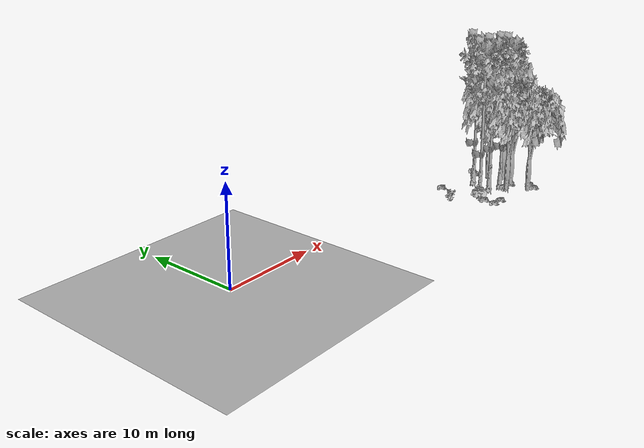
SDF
<sdf version="1.7">
 <world name="default">
  <model name="ground_plane">
   <static>1</static>
   <link name="link">
    <collision name="collision">
     <pose>-50 0 0 0 -0 0</pose>
     <geometry><plane><normal>0 0 1</normal><size>80 80</size></plane></geometry>
     <surface><contact><ode><min_depth>0.01</min_depth><max_vel>0</max_vel></ode></contact></surface>
    </collision>
    <visual name="grass">
     <cast_shadows>0</cast_shadows>
     <geometry>
      <mesh>
       <scale>0.46714285714285714 0.46714285714285714 0.1</scale>
       <uri>file://grass_plane/meshes/grass_plane.dae</uri>
      </mesh>
     </geometry>
    </visual>
   </link>
  </model>
  <model name="Tree 49">
   <static>1</static>
   <pose>36.267385386695864 -2.3112603195002066 0 1.57079 -0 0</pose>
   <link name="link">
    <collision name="collision">
     <geometry><mesh><scale>3.5 5 3.5</scale><uri>model://tree_9/meshes/tree_9.obj</uri></mesh></geometry>
    </collision>
    <visual name="visual">
     <geometry><mesh><scale>3.5 5 3.5</scale><uri>model://tree_9/meshes/tree_9.obj</uri></mesh></geometry>
    </visual>
   </link>
  </model>
  <model name="Tree 81">
   <static>1</static>
   <pose>33.27344799157406 -4.922056203837627 0 1.57079 -0 0</pose>
   <link name="link">
    <collision name="collision">
     <geometry><mesh><scale>3.5 5 3.5</scale><uri>model://tree_9/meshes/tree_9.obj</uri></mesh></geometry>
    </collision>
    <visual name="visual">
     <geometry><mesh><scale>3.5 5 3.5</scale><uri>model://tree_9/meshes/tree_9.obj</uri></mesh></geometry>
    </visual>
   </link>
  </model>
  <model name="Tree 222">
   <static>1</static>
   <pose>35.964512114046315 -6.669212024185512 0 1.57079 -0 0</pose>
   <link name="link">
    <collision name="collision">
     <geometry><mesh><scale>3.5 5 3.5</scale><uri>model://tree_2/meshes/tree_2.obj</uri></mesh></geometry>
    </collision>
    <visual name="visual">
     <geometry><mesh><scale>3.5 5 3.5</scale><uri>model://tree_2/meshes/tree_2.obj</uri></mesh></geometry>
    </visual>
   </link>
  </model>
  <model name="Tree 233">
   <static>1</static>
   <pose>37.664893095048384 -3.294324081304161 0 1.57079 -0 0</pose>
   <link name="link">
    <collision name="collision">
     <geometry><mesh><scale>3.5 5 3.5</scale><uri>model://tree_2/meshes/tree_2.obj</uri></mesh></geometry>
    </collision>
    <visual name="visual">
     <geometry><mesh><scale>3.5 5 3.5</scale><uri>model://tree_2/meshes/tree_2.obj</uri></mesh></geometry>
    </visual>
   </link>
  </model>
  <model name="Tree 355">
   <static>1</static>
   <pose>37.239402678017484 -6.489907535785129 0 1.57079 -0 0</pose>
   <link name="link">
    <collision name="collision">
     <geometry><mesh><scale>3.5 5 3.5</scale><uri>model://tree_2/meshes/tree_2.obj</uri></mesh></geometry>
    </collision>
    <visual name="visual">
     <geometry><mesh><scale>3.5 5 3.5</scale><uri>model://tree_2/meshes/tree_2.obj</uri></mesh></geometry>
    </visual>
   </link>
  </model>
  <model name="Tree 370">
   <static>1</static>
   <pose>37.140397893913075 -8.655958073097505 0 1.57079 -0 0</pose>
   <link name="link">
    <collision name="collision">
     <geometry><mesh><scale>3.5 5 3.5</scale><uri>model://tree_2/meshes/tree_2.obj</uri></mesh></geometry>
    </collision>
    <visual name="visual">
     <geometry><mesh><scale>3.5 5 3.5</scale><uri>model://tree_2/meshes/tree_2.obj</uri></mesh></geometry>
    </visual>
   </link>
  </model>
  <model name="Tree 414">
   <static>1</static>
   <pose>37.15074123495553 -6.0526878367285235 0 1.57079 -0 0</pose>
   <link name="link">
    <collision name="collision">
     <geometry><mesh><scale>3.5 5 3.5</scale><uri>model://tree_9/meshes/tree_9.obj</uri></mesh></geometry>
    </collision>
    <visual name="visual">
     <geometry><mesh><scale>3.5 5 3.5</scale><uri>model://tree_9/meshes/tree_9.obj</uri></mesh></geometry>
    </visual>
   </link>
  </model>
  <model name="Tree 528">
   <static>1</static>
   <pose>38.28811265814281 -4.883749437630591 0 1.57079 -0 0</pose>
   <link name="link">
    <collision name="collision">
     <geometry><mesh><scale>3.5 5 3.5</scale><uri>model://tree_2/meshes/tree_2.obj</uri></mesh></geometry>
    </collision>
    <visual name="visual">
     <geometry><mesh><scale>3.5 5 3.5</scale><uri>model://tree_2/meshes/tree_2.obj</uri></mesh></geometry>
    </visual>
   </link>
  </model>
  <model name="Tree 536">
   <static>1</static>
   <pose>35.52956928691674 -4.781278936671029 0 1.57079 -0 0</pose>
   <link name="link">
    <collision name="collision">
     <geometry><mesh><scale>3.5 5 3.5</scale><uri>model://tree_9/meshes/tree_9.obj</uri></mesh></geometry>
    </collision>
    <visual name="visual">
     <geometry><mesh><scale>3.5 5 3.5</scale><uri>model://tree_9/meshes/tree_9.obj</uri></mesh></geometry>
    </visual>
   </link>
  </model>
  <model name="Tree 570">
   <static>1</static>
   <pose>37.0962918536724 -5.254682769402869 0 1.57079 -0 0</pose>
   <link name="link">
    <collision name="collision">
     <geometry><mesh><scale>3.5 5 3.5</scale><uri>model://tree_9/meshes/tree_9.obj</uri></mesh></geometry>
    </collision>
    <visual name="visual">
     <geometry><mesh><scale>3.5 5 3.5</scale><uri>model://tree_9/meshes/tree_9.obj</uri></mesh></geometry>
    </visual>
   </link>
  </model>
  <model name="Bush 45">
   <static>1</static>
   <pose>37.375592375566725 -6.466779393883819 0 1.57079 -0 0</pose>
   <link name="link">
    <collision name="collision">
     <geometry><mesh><scale>2 2 2</scale><uri>model://bush_2/meshes/bush_2.obj</uri></mesh></geometry>
     <surface><contact><collide_without_contact>false</collide_without_contact></contact></surface>
    </collision>
    <visual name="visual">
     <geometry><mesh><scale>2 2 2</scale><uri>model://bush_2/meshes/bush_2.obj</uri></mesh></geometry>
    </visual>
   </link>
  </model>
  <model name="Bush 135">
   <static>1</static>
   <pose>37.76724901328694 -1.6279764885350971 0 1.57079 -0 0</pose>
   <link name="link">
    <collision name="collision">
     <geometry><mesh><scale>2 2 2</scale><uri>model://bush_2/meshes/bush_2.obj</uri></mesh></geometry>
     <surface><contact><collide_without_contact>false</collide_without_contact></contact></surface>
    </collision>
    <visual name="visual">
     <geometry><mesh><scale>2 2 2</scale><uri>model://bush_2/meshes/bush_2.obj</uri></mesh></geometry>
    </visual>
   </link>
  </model>
  <model name="Bush 193">
   <static>1</static>
   <pose>38.6854486578068 -8.156723159441121 0 1.57079 -0 0</pose>
   <link name="link">
    <collision name="collision">
     <geometry><mesh><scale>2 2 2</scale><uri>model://bush_2/meshes/bush_2.obj</uri></mesh></geometry>
     <surface><contact><collide_without_contact>false</collide_without_contact></contact></surface>
    </collision>
    <visual name="visual">
     <geometry><mesh><scale>2 2 2</scale><uri>model://bush_2/meshes/bush_2.obj</uri></mesh></geometry>
    </visual>
   </link>
  </model>
  <model name="Bush 228">
   <static>1</static>
   <pose>38.49135223998286 -0.9114150965276338 0 1.57079 -0 0</pose>
   <link name="link">
    <collision name="collision">
     <geometry><mesh><scale>2 2 2</scale><uri>model://bush_2/meshes/bush_2.obj</uri></mesh></geometry>
     <surface><contact><collide_without_contact>false</collide_without_contact></contact></surface>
    </collision>
    <visual name="visual">
     <geometry><mesh><scale>2 2 2</scale><uri>model://bush_2/meshes/bush_2.obj</uri></mesh></geometry>
    </visual>
   </link>
  </model>
  <model name="Bush 259">
   <static>1</static>
   <pose>38.12993567325894 -8.995230604008935 0 1.57079 -0 0</pose>
   <link name="link">
    <collision name="collision">
     <geometry><mesh><scale>2 2 2</scale><uri>model://bush_2/meshes/bush_2.obj</uri></mesh></geometry>
     <surface><contact><collide_without_contact>false</collide_without_contact></contact></surface>
    </collision>
    <visual name="visual">
     <geometry><mesh><scale>2 2 2</scale><uri>model://bush_2/meshes/bush_2.obj</uri></mesh></geometry>
    </visual>
   </link>
  </model>
  <model name="Bush 273">
   <static>1</static>
   <pose>36.23165075402092 -6.301563213494674 0 1.57079 -0 0</pose>
   <link name="link">
    <collision name="collision">
     <geometry><mesh><scale>2 2 2</scale><uri>model://bush_2/meshes/bush_2.obj</uri></mesh></geometry>
     <surface><contact><collide_without_contact>false</collide_without_contact></contact></surface>
    </collision>
    <visual name="visual">
     <geometry><mesh><scale>2 2 2</scale><uri>model://bush_2/meshes/bush_2.obj</uri></mesh></geometry>
    </visual>
   </link>
  </model>
  <model name="Bush 298">
   <static>1</static>
   <pose>31.35496433255794 -7.832826851000981 0 1.57079 -0 0</pose>
   <link name="link">
    <collision name="collision">
     <geometry><mesh><scale>2 2 2</scale><uri>model://bush_2/meshes/bush_2.obj</uri></mesh></geometry>
     <surface><contact><collide_without_contact>false</collide_without_contact></contact></surface>
    </collision>
    <visual name="visual">
     <geometry><mesh><scale>2 2 2</scale><uri>model://bush_2/meshes/bush_2.obj</uri></mesh></geometry>
    </visual>
   </link>
  </model>
  <model name="Bush 457">
   <static>1</static>
   <pose>29.1826141840462 -3.7686473076103866 0 1.57079 -0 0</pose>
   <link name="link">
    <collision name="collision">
     <geometry><mesh><scale>2 2 2</scale><uri>model://bush_4/meshes/bush_4.obj</uri></mesh></geometry>
     <surface><contact><collide_without_contact>false</collide_without_contact></contact></surface>
    </collision>
    <visual name="visual">
     <geometry><mesh><scale>2 2 2</scale><uri>model://bush_4/meshes/bush_4.obj</uri></mesh></geometry>
    </visual>
   </link>
  </model>
  <model name="Bush 471">
   <static>1</static>
   <pose>32.54861941913836 -7.961301222896751 0 1.57079 -0 0</pose>
   <link name="link">
    <collision name="collision">
     <geometry><mesh><scale>2 2 2</scale><uri>model://bush_2/meshes/bush_2.obj</uri></mesh></geometry>
     <surface><contact><collide_without_contact>false</collide_without_contact></contact></surface>
    </collision>
    <visual name="visual">
     <geometry><mesh><scale>2 2 2</scale><uri>model://bush_2/meshes/bush_2.obj</uri></mesh></geometry>
    </visual>
   </link>
  </model>
  <model name="Bush 532">
   <static>1</static>
   <pose>38.15108384336729 -5.886942305119177 0 1.57079 -0 0</pose>
   <link name="link">
    <collision name="collision">
     <geometry><mesh><scale>2 2 2</scale><uri>model://bush_2/meshes/bush_2.obj</uri></mesh></geometry>
     <surface><contact><collide_without_contact>false</collide_without_contact></contact></surface>
    </collision>
    <visual name="visual">
     <geometry><mesh><scale>2 2 2</scale><uri>model://bush_2/meshes/bush_2.obj</uri></mesh></geometry>
    </visual>
   </link>
  </model>
  <model name="Bush 555">
   <static>1</static>
   <pose>31.46618601821322 -6.600883563415955 0 1.57079 -0 0</pose>
   <link name="link">
    <collision name="collision">
     <geometry><mesh><scale>2 2 2</scale><uri>model://bush_2/meshes/bush_2.obj</uri></mesh></geometry>
     <surface><contact><collide_without_contact>false</collide_without_contact></contact></surface>
    </collision>
    <visual name="visual">
     <geometry><mesh><scale>2 2 2</scale><uri>model://bush_2/meshes/bush_2.obj</uri></mesh></geometry>
    </visual>
   </link>
  </model>
  <model name="Bush 609">
   <static>1</static>
   <pose>31.027624283855175 -6.295026142552977 0 1.57079 -0 0</pose>
   <link name="link">
    <collision name="collision">
     <geometry><mesh><scale>2 2 2</scale><uri>model://bush_1/meshes/bush_1.obj</uri></mesh></geometry>
     <surface><contact><collide_without_contact>false</collide_without_contact></contact></surface>
    </collision>
    <visual name="visual">
     <geometry><mesh><scale>2 2 2</scale><uri>model://bush_1/meshes/bush_1.obj</uri></mesh></geometry>
    </visual>
   </link>
  </model>
  <model name="Bush 630">
   <static>1</static>
   <pose>31.66236112916367 -1.0359013506702581 0 1.57079 -0 0</pose>
   <link name="link">
    <collision name="collision">
     <geometry><mesh><scale>2 2 2</scale><uri>model://bush_2/meshes/bush_2.obj</uri></mesh></geometry>
     <surface><contact><collide_without_contact>false</collide_without_contact></contact></surface>
    </collision>
    <visual name="visual">
     <geometry><mesh><scale>2 2 2</scale><uri>model://bush_2/meshes/bush_2.obj</uri></mesh></geometry>
    </visual>
   </link>
  </model>
 </world>
</sdf>
